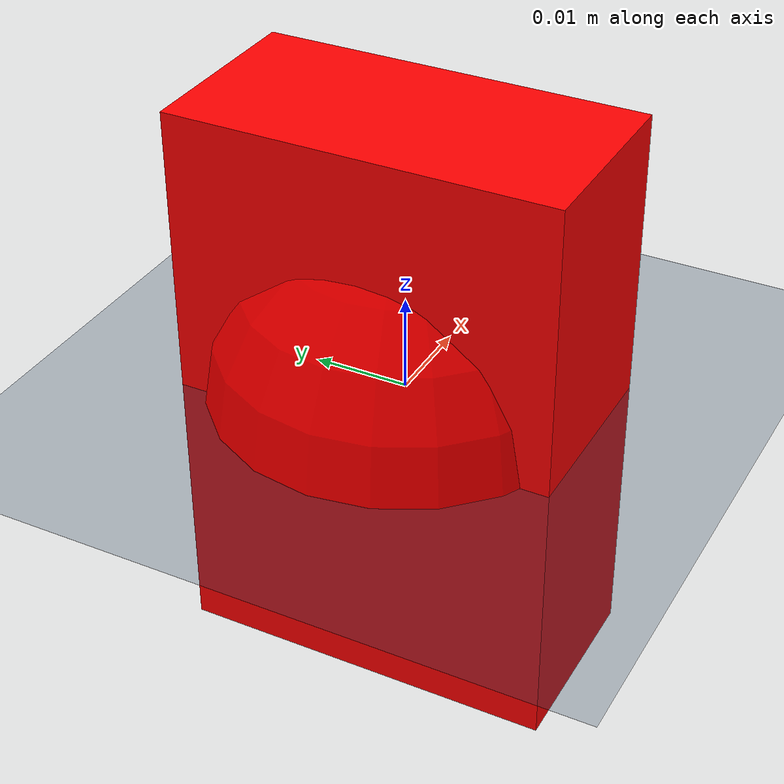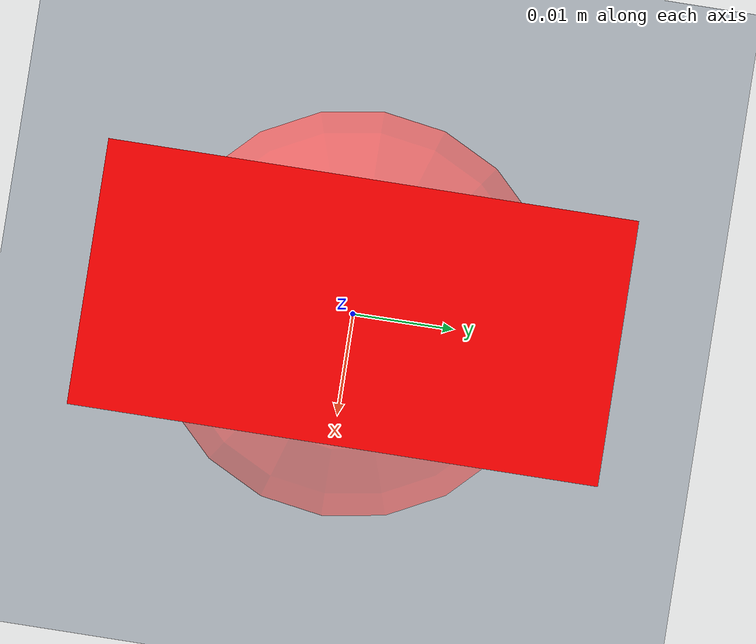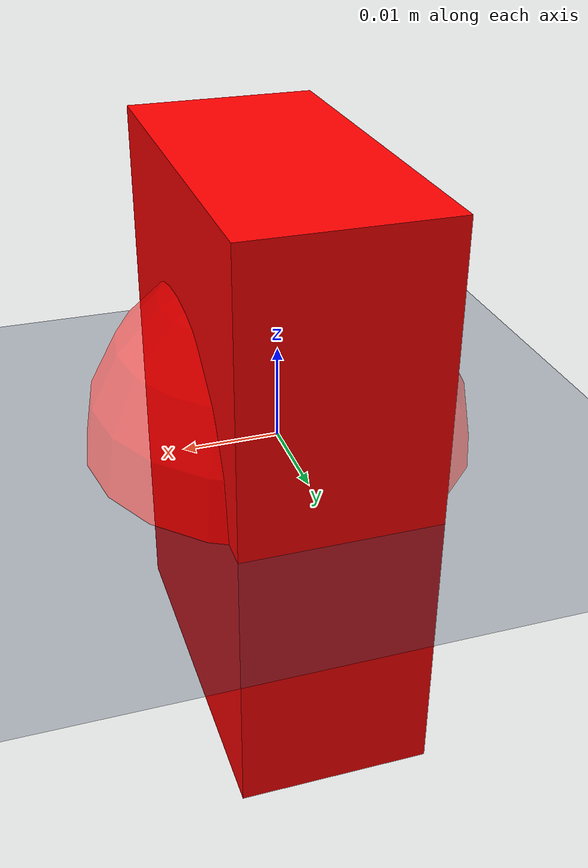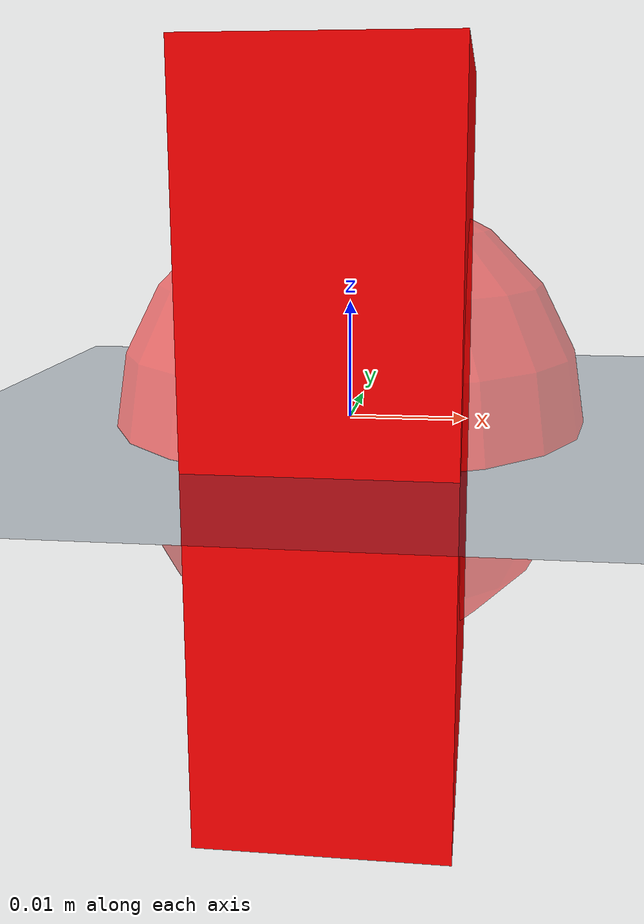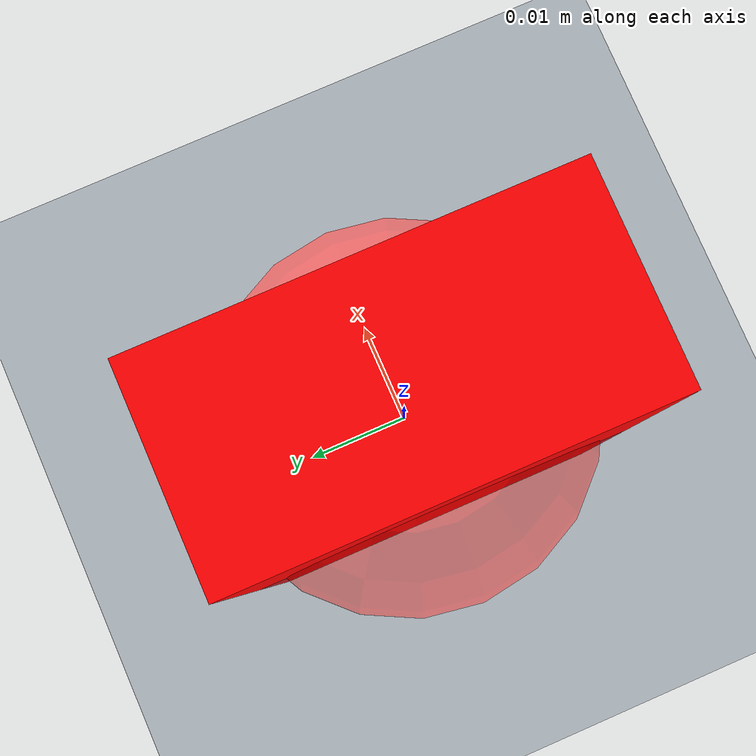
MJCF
<mujoco>
    <asset>
        <texture type="skybox" builtin="gradient" rgb1="0.3 0.5 0.7" rgb2="0 0 0" width="512"
            height="3072" />
        <texture type="2d" name="groundplane" builtin="checker" mark="edge" rgb1="0.2 0.3 0.4"
            rgb2="0.1 0.2 0.3"
            markrgb="0.8 0.8 0.8" width="300" height="300" />
        <material name="groundplane" texture="groundplane" texuniform="true" texrepeat="5 5"
            reflectance="0.2" />
    </asset>

    <default>
        <default class="fingertip">
            <site size="0.02" type="sphere" rgba="1 0 0 0.5" group="0" />
            <geom type="sphere" size="0.02" rgba="1 0 0 0.5" group="0" contype="0" conaffinity="0" />
        </default>
        <default class="wrist">
            <site size="0.01 0.02 0.03" type="box" rgba="1 0 0 1" group="0" />
            <geom type="box" size="0.01 0.02 0.03" rgba="1 0 0 1" group="0" contype="0"
                conaffinity="0" />
        </default>
    </default>

    <worldbody>
        <light pos="0 0 3.5" dir="0 0 -1" directional="false" />
        <geom type="plane" size="100 100 0.1" pos="0 0 0" material="groundplane" conaffinity="0"
            contype="0" />

        <!-- add wrist body -->
        <body name="right_wrist" pos="0 0 0">
            <freejoint />
            <site name="right_wrist" pos="0 0 0" class="wrist" />
            <geom name="right_wrist" class="wrist" />
        </body>

        <!-- add body for mocap -->
        <body name="right_thumb_tip" pos="0 0 0">
            <freejoint />
            <site name="right_thumb_tip" pos="0 0 0" class="fingertip" />
            <geom name="right_thumb_tip" class="fingertip" />
        </body>
        <body name="right_index_tip" pos="0 0 0">
            <freejoint />
            <site name="right_index_tip" pos="0 0 0" class="fingertip" />
            <geom name="right_index_tip" class="fingertip" />
        </body>
        <body name="right_middle_tip" pos="0 0 0">
            <freejoint />
            <site name="right_middle_tip" pos="0 0 0" class="fingertip" />
            <geom name="right_middle_tip" class="fingertip" />
        </body>
        <body name="right_ring_tip" pos="0 0 0">
            <freejoint />
            <site name="right_ring_tip" pos="0 0 0" class="fingertip" />
            <geom name="right_ring_tip" class="fingertip" />
        </body>
        <body name="right_pinky_tip" pos="0 0 0">
            <freejoint />
            <site name="right_pinky_tip" pos="0 0 0" class="fingertip" />
            <geom name="right_pinky_tip" class="fingertip" />
        </body>

        <!-- add left wrist and fingertips mocap bodies -->
        <body name="left_wrist" pos="0 0 0">
            <freejoint />
            <site name="left_wrist" pos="0 0 0" class="wrist" />
            <geom name="left_wrist" class="wrist" />
        </body>

        <body name="left_thumb_tip" pos="0 0 0">
            <freejoint />
            <site name="left_thumb_tip" pos="0 0 0" class="fingertip" />
            <geom name="left_thumb_tip" class="fingertip" />
        </body>
        <body name="left_index_tip" pos="0 0 0">
            <freejoint />
            <site name="left_index_tip" pos="0 0 0" class="fingertip" />
            <geom name="left_index_tip" class="fingertip" />
        </body>
        <body name="left_middle_tip" pos="0 0 0">
            <freejoint />
            <site name="left_middle_tip" pos="0 0 0" class="fingertip" />
            <geom name="left_middle_tip" class="fingertip" />
        </body>
        <body name="left_ring_tip" pos="0 0 0">
            <freejoint />
            <site name="left_ring_tip" pos="0 0 0" class="fingertip" />
            <geom name="left_ring_tip" class="fingertip" />
        </body>
        <body name="left_pinky_tip" pos="0 0 0">
            <freejoint />
            <site name="left_pinky_tip" pos="0 0 0" class="fingertip" />
            <geom name="left_pinky_tip" class="fingertip" />
        </body>

    </worldbody>

    <sensor>
        <touch name="right_thumb_tip" site="right_thumb_tip" />
        <touch name="right_index_tip" site="right_index_tip" />
        <touch name="right_middle_tip" site="right_middle_tip" />
        <touch name="right_ring_tip" site="right_ring_tip" />
        <touch name="right_pinky_tip" site="right_pinky_tip" />
        <touch name="left_thumb_tip" site="left_thumb_tip" />
        <touch name="left_index_tip" site="left_index_tip" />
        <touch name="left_middle_tip" site="left_middle_tip" />
        <touch name="left_ring_tip" site="left_ring_tip" />
        <touch name="left_pinky_tip" site="left_pinky_tip" />
    </sensor>
</mujoco>
